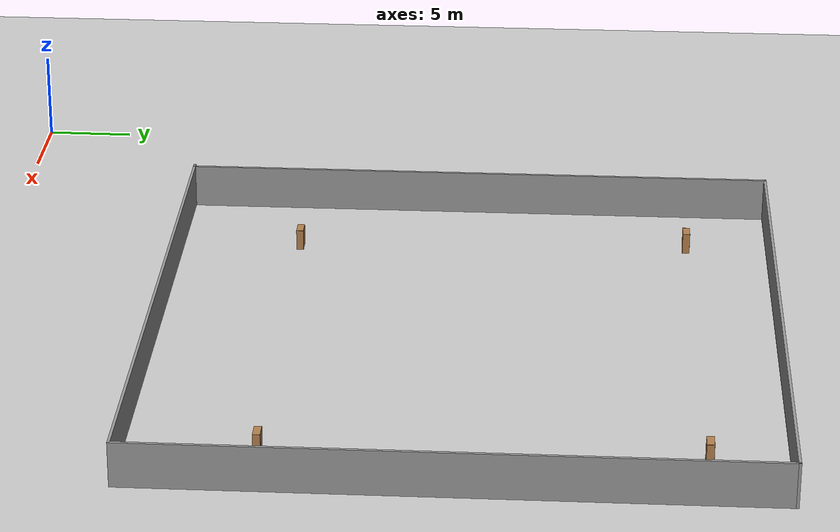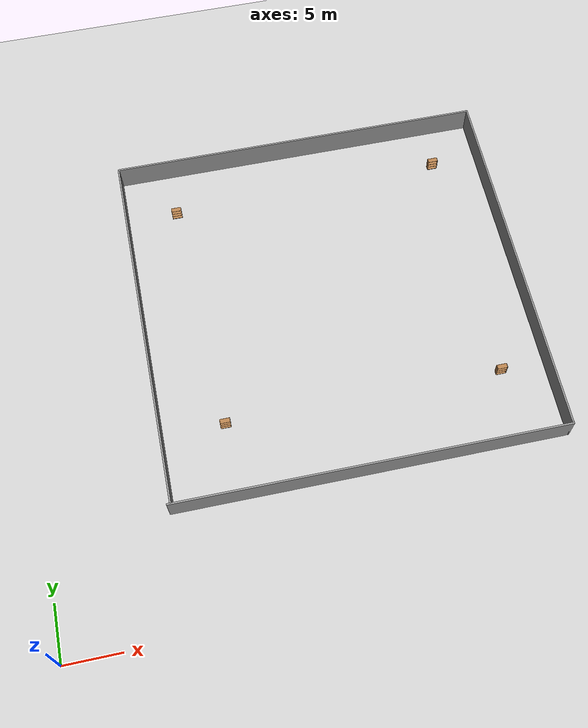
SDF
<sdf version="1.6">
 <world name="default">
  <light name="sun" type="directional">
   <pose>0 0 10 0 -0 0</pose>
   <diffuse>0.8 0.8 0.8 1</diffuse>
   <specular>0.2 0.2 0.2 1</specular>
   <attenuation>
    <range>1000</range>
    <constant>0.9</constant>
    <linear>0.01</linear>
    <quadratic>0.001</quadratic>
   </attenuation>
   <direction>-0.5 0.1 -0.9</direction>
  </light>
  <model name="ground_plane">
   <static>1</static>
   <link name="link">
    <collision name="collision">
     <geometry><plane><normal>0 0 1</normal><size>100 100</size></plane></geometry>
     <surface>
      <contact><collide_bitmask>65535</collide_bitmask></contact>
      <friction><ode><mu>100</mu><mu2>50</mu2></ode></friction>
     </surface>
    </collision>
    <visual name="visual">
     <cast_shadows>0</cast_shadows>
     <geometry><plane><normal>0 0 1</normal><size>100 100</size></plane></geometry>
     <material>
      <script><uri>file://media/materials/scripts/gazebo.material</uri><name>Gazebo/Grey</name></script>
     </material>
    </visual>
   </link>
  </model>
  <gravity>0 0 -9.8</gravity>
  <magnetic_field>6e-06 2.3e-05 -4.2e-05</magnetic_field>
  <atmosphere type="adiabatic"/>
  <physics name="default_physics" default="0" type="ode">
   <max_step_size>0.001</max_step_size>
   <real_time_factor>1</real_time_factor>
   <real_time_update_rate>1000</real_time_update_rate>
  </physics>
  <scene><ambient>0.4 0.4 0.4 1</ambient><background>0.7 0.7 0.7 1</background><shadows>1</shadows></scene>
  <spherical_coordinates>
   <surface_model>EARTH_WGS84</surface_model>
   <latitude_deg>0</latitude_deg>
   <longitude_deg>0</longitude_deg>
   <elevation>0</elevation>
   <heading_deg>0</heading_deg>
  </spherical_coordinates>
  <model name="ped_wall">
   <pose>27.5432 27.4176 0 0 -0 0</pose>
   <link name="Wall_29">
    <collision name="Wall_29_Collision">
     <geometry><box><size>34.75 0.15 2.5</size></box></geometry>
     <pose>0 0 1.25 0 -0 0</pose>
    </collision>
    <visual name="Wall_29_Visual">
     <pose>0 0 1.25 0 -0 0</pose>
     <geometry><box><size>34.75 0.15 2.5</size></box></geometry>
     <material>
      <script><uri>file://media/materials/scripts/gazebo.material</uri><name>Gazebo/Grey</name></script>
      <ambient>1 1 1 1</ambient>
     </material>
     <meta><layer>0</layer></meta>
    </visual>
    <pose>0 -16.925 0 0 -0 0</pose>
   </link>
   <link name="Wall_30">
    <collision name="Wall_30_Collision">
     <geometry><box><size>34 0.15 2.5</size></box></geometry>
     <pose>0 0 1.25 0 -0 0</pose>
    </collision>
    <visual name="Wall_30_Visual">
     <pose>0 0 1.25 0 -0 0</pose>
     <geometry><box><size>34 0.15 2.5</size></box></geometry>
     <material>
      <script><uri>file://media/materials/scripts/gazebo.material</uri><name>Gazebo/Grey</name></script>
      <ambient>1 1 1 1</ambient>
     </material>
     <meta><layer>0</layer></meta>
    </visual>
    <pose>17.3 0 0 0 -0 1.5708</pose>
   </link>
   <link name="Wall_31">
    <collision name="Wall_31_Collision">
     <geometry><box><size>34.5 0.15 2.5</size></box></geometry>
     <pose>0 0 1.25 0 -0 0</pose>
    </collision>
    <visual name="Wall_31_Visual">
     <pose>0 0 1.25 0 -0 0</pose>
     <geometry><box><size>34.5 0.15 2.5</size></box></geometry>
     <material>
      <script><uri>file://media/materials/scripts/gazebo.material</uri><name>Gazebo/Grey</name></script>
      <ambient>1 1 1 1</ambient>
     </material>
     <meta><layer>0</layer></meta>
    </visual>
    <pose>0.125 16.925 0 0 -0 3.14159</pose>
   </link>
   <link name="Wall_32">
    <collision name="Wall_32_Collision">
     <geometry><box><size>34 0.15 2.5</size></box></geometry>
     <pose>0 0 1.25 0 -0 0</pose>
    </collision>
    <visual name="Wall_32_Visual">
     <pose>0 0 1.25 0 -0 0</pose>
     <geometry><box><size>34 0.15 2.5</size></box></geometry>
     <material>
      <script><uri>file://media/materials/scripts/gazebo.material</uri><name>Gazebo/Grey</name></script>
      <ambient>1 1 1 1</ambient>
     </material>
     <meta><layer>0</layer></meta>
    </visual>
    <pose>-17.05 0 0 0 -0 -1.5708</pose>
   </link>
   <static>1</static>
  </model>
  <model name="bookshelf">
   <static>1</static>
   <link name="link">
    <inertial><mass>1</mass></inertial>
    <collision name="back">
     <pose>0 0.005 0.6 0 -0 0</pose>
     <geometry><box><size>0.9 0.01 1.2</size></box></geometry>
    </collision>
    <visual name="visual1">
     <pose>0 0.005 0.6 0 -0 0</pose>
     <geometry><box><size>0.9 0.01 1.2</size></box></geometry>
     <material>
      <script><uri>file://media/materials/scripts/gazebo.material</uri><name>Gazebo/Wood</name></script>
     </material>
    </visual>
    <collision name="left_side">
     <pose>0.45 -0.195 0.6 0 -0 0</pose>
     <geometry><box><size>0.02 0.4 1.2</size></box></geometry>
    </collision>
    <visual name="visual2">
     <pose>0.45 -0.195 0.6 0 -0 0</pose>
     <geometry><box><size>0.02 0.4 1.2</size></box></geometry>
     <material>
      <script><uri>file://media/materials/scripts/gazebo.material</uri><name>Gazebo/Wood</name></script>
     </material>
    </visual>
    <collision name="right_side">
     <pose>-0.45 -0.195 0.6 0 -0 0</pose>
     <geometry><box><size>0.02 0.4 1.2</size></box></geometry>
    </collision>
    <visual name="visual3">
     <pose>-0.45 -0.195 0.6 0 -0 0</pose>
     <geometry><box><size>0.02 0.4 1.2</size></box></geometry>
     <material>
      <script><uri>file://media/materials/scripts/gazebo.material</uri><name>Gazebo/Wood</name></script>
     </material>
    </visual>
    <collision name="bottom">
     <pose>0 -0.195 0.03 0 -0 0</pose>
     <geometry><box><size>0.88 0.4 0.06</size></box></geometry>
    </collision>
    <visual name="visual4">
     <pose>0 -0.195 0.03 0 -0 0</pose>
     <geometry><box><size>0.88 0.4 0.06</size></box></geometry>
     <material>
      <script><uri>file://media/materials/scripts/gazebo.material</uri><name>Gazebo/Wood</name></script>
     </material>
    </visual>
    <collision name="top">
     <pose>0 -0.195 1.19 0 -0 0</pose>
     <geometry><box><size>0.88 0.4 0.02</size></box></geometry>
    </collision>
    <visual name="visual5">
     <pose>0 -0.195 1.19 0 -0 0</pose>
     <geometry><box><size>0.88 0.4 0.02</size></box></geometry>
     <material>
      <script><uri>file://media/materials/scripts/gazebo.material</uri><name>Gazebo/Wood</name></script>
     </material>
    </visual>
    <collision name="low_shelf">
     <pose>0 -0.195 0.43 0 -0 0</pose>
     <geometry><box><size>0.88 0.4 0.02</size></box></geometry>
    </collision>
    <visual name="visual6">
     <pose>0 -0.195 0.43 0 -0 0</pose>
     <geometry><box><size>0.88 0.4 0.02</size></box></geometry>
     <material>
      <script><uri>file://media/materials/scripts/gazebo.material</uri><name>Gazebo/Wood</name></script>
     </material>
    </visual>
    <collision name="high_shelf">
     <pose>0 -0.195 0.8 0 -0 0</pose>
     <geometry><box><size>0.88 0.4 0.02</size></box></geometry>
    </collision>
    <visual name="visual7">
     <pose>0 -0.195 0.8 0 -0 0</pose>
     <geometry><box><size>0.88 0.4 0.02</size></box></geometry>
     <material>
      <script><uri>file://media/materials/scripts/gazebo.material</uri><name>Gazebo/Wood</name></script>
     </material>
    </visual>
   </link>
   <pose>15.1772 39.8449 0 0 -0 0</pose>
  </model>
  <model name="bookshelf_0">
   <static>1</static>
   <link name="link">
    <inertial><mass>1</mass></inertial>
    <collision name="back">
     <pose>0 0.005 0.6 0 -0 0</pose>
     <geometry><box><size>0.9 0.01 1.2</size></box></geometry>
    </collision>
    <visual name="visual1">
     <pose>0 0.005 0.6 0 -0 0</pose>
     <geometry><box><size>0.9 0.01 1.2</size></box></geometry>
     <material>
      <script><uri>file://media/materials/scripts/gazebo.material</uri><name>Gazebo/Wood</name></script>
     </material>
    </visual>
    <collision name="left_side">
     <pose>0.45 -0.195 0.6 0 -0 0</pose>
     <geometry><box><size>0.02 0.4 1.2</size></box></geometry>
    </collision>
    <visual name="visual2">
     <pose>0.45 -0.195 0.6 0 -0 0</pose>
     <geometry><box><size>0.02 0.4 1.2</size></box></geometry>
     <material>
      <script><uri>file://media/materials/scripts/gazebo.material</uri><name>Gazebo/Wood</name></script>
     </material>
    </visual>
    <collision name="right_side">
     <pose>-0.45 -0.195 0.6 0 -0 0</pose>
     <geometry><box><size>0.02 0.4 1.2</size></box></geometry>
    </collision>
    <visual name="visual3">
     <pose>-0.45 -0.195 0.6 0 -0 0</pose>
     <geometry><box><size>0.02 0.4 1.2</size></box></geometry>
     <material>
      <script><uri>file://media/materials/scripts/gazebo.material</uri><name>Gazebo/Wood</name></script>
     </material>
    </visual>
    <collision name="bottom">
     <pose>0 -0.195 0.03 0 -0 0</pose>
     <geometry><box><size>0.88 0.4 0.06</size></box></geometry>
    </collision>
    <visual name="visual4">
     <pose>0 -0.195 0.03 0 -0 0</pose>
     <geometry><box><size>0.88 0.4 0.06</size></box></geometry>
     <material>
      <script><uri>file://media/materials/scripts/gazebo.material</uri><name>Gazebo/Wood</name></script>
     </material>
    </visual>
    <collision name="top">
     <pose>0 -0.195 1.19 0 -0 0</pose>
     <geometry><box><size>0.88 0.4 0.02</size></box></geometry>
    </collision>
    <visual name="visual5">
     <pose>0 -0.195 1.19 0 -0 0</pose>
     <geometry><box><size>0.88 0.4 0.02</size></box></geometry>
     <material>
      <script><uri>file://media/materials/scripts/gazebo.material</uri><name>Gazebo/Wood</name></script>
     </material>
    </visual>
    <collision name="low_shelf">
     <pose>0 -0.195 0.43 0 -0 0</pose>
     <geometry><box><size>0.88 0.4 0.02</size></box></geometry>
    </collision>
    <visual name="visual6">
     <pose>0 -0.195 0.43 0 -0 0</pose>
     <geometry><box><size>0.88 0.4 0.02</size></box></geometry>
     <material>
      <script><uri>file://media/materials/scripts/gazebo.material</uri><name>Gazebo/Wood</name></script>
     </material>
    </visual>
    <collision name="high_shelf">
     <pose>0 -0.195 0.8 0 -0 0</pose>
     <geometry><box><size>0.88 0.4 0.02</size></box></geometry>
    </collision>
    <visual name="visual7">
     <pose>0 -0.195 0.8 0 -0 0</pose>
     <geometry><box><size>0.88 0.4 0.02</size></box></geometry>
     <material>
      <script><uri>file://media/materials/scripts/gazebo.material</uri><name>Gazebo/Wood</name></script>
     </material>
    </visual>
   </link>
   <pose>16.0614 17.5317 0 0 -0 0</pose>
  </model>
  <model name="bookshelf_1">
   <static>1</static>
   <link name="link">
    <inertial><mass>1</mass></inertial>
    <collision name="back">
     <pose>0 0.005 0.6 0 -0 0</pose>
     <geometry><box><size>0.9 0.01 1.2</size></box></geometry>
    </collision>
    <visual name="visual1">
     <pose>0 0.005 0.6 0 -0 0</pose>
     <geometry><box><size>0.9 0.01 1.2</size></box></geometry>
     <material>
      <script><uri>file://media/materials/scripts/gazebo.material</uri><name>Gazebo/Wood</name></script>
     </material>
    </visual>
    <collision name="left_side">
     <pose>0.45 -0.195 0.6 0 -0 0</pose>
     <geometry><box><size>0.02 0.4 1.2</size></box></geometry>
    </collision>
    <visual name="visual2">
     <pose>0.45 -0.195 0.6 0 -0 0</pose>
     <geometry><box><size>0.02 0.4 1.2</size></box></geometry>
     <material>
      <script><uri>file://media/materials/scripts/gazebo.material</uri><name>Gazebo/Wood</name></script>
     </material>
    </visual>
    <collision name="right_side">
     <pose>-0.45 -0.195 0.6 0 -0 0</pose>
     <geometry><box><size>0.02 0.4 1.2</size></box></geometry>
    </collision>
    <visual name="visual3">
     <pose>-0.45 -0.195 0.6 0 -0 0</pose>
     <geometry><box><size>0.02 0.4 1.2</size></box></geometry>
     <material>
      <script><uri>file://media/materials/scripts/gazebo.material</uri><name>Gazebo/Wood</name></script>
     </material>
    </visual>
    <collision name="bottom">
     <pose>0 -0.195 0.03 0 -0 0</pose>
     <geometry><box><size>0.88 0.4 0.06</size></box></geometry>
    </collision>
    <visual name="visual4">
     <pose>0 -0.195 0.03 0 -0 0</pose>
     <geometry><box><size>0.88 0.4 0.06</size></box></geometry>
     <material>
      <script><uri>file://media/materials/scripts/gazebo.material</uri><name>Gazebo/Wood</name></script>
     </material>
    </visual>
    <collision name="top">
     <pose>0 -0.195 1.19 0 -0 0</pose>
     <geometry><box><size>0.88 0.4 0.02</size></box></geometry>
    </collision>
    <visual name="visual5">
     <pose>0 -0.195 1.19 0 -0 0</pose>
     <geometry><box><size>0.88 0.4 0.02</size></box></geometry>
     <material>
      <script><uri>file://media/materials/scripts/gazebo.material</uri><name>Gazebo/Wood</name></script>
     </material>
    </visual>
    <collision name="low_shelf">
     <pose>0 -0.195 0.43 0 -0 0</pose>
     <geometry><box><size>0.88 0.4 0.02</size></box></geometry>
    </collision>
    <visual name="visual6">
     <pose>0 -0.195 0.43 0 -0 0</pose>
     <geometry><box><size>0.88 0.4 0.02</size></box></geometry>
     <material>
      <script><uri>file://media/materials/scripts/gazebo.material</uri><name>Gazebo/Wood</name></script>
     </material>
    </visual>
    <collision name="high_shelf">
     <pose>0 -0.195 0.8 0 -0 0</pose>
     <geometry><box><size>0.88 0.4 0.02</size></box></geometry>
    </collision>
    <visual name="visual7">
     <pose>0 -0.195 0.8 0 -0 0</pose>
     <geometry><box><size>0.88 0.4 0.02</size></box></geometry>
     <material>
      <script><uri>file://media/materials/scripts/gazebo.material</uri><name>Gazebo/Wood</name></script>
     </material>
    </visual>
   </link>
   <pose>40.4371 40.408 0 0 -0 0</pose>
  </model>
  <model name="bookshelf_2">
   <static>1</static>
   <link name="link">
    <inertial><mass>1</mass></inertial>
    <collision name="back">
     <pose>0 0.005 0.6 0 -0 0</pose>
     <geometry><box><size>0.9 0.01 1.2</size></box></geometry>
    </collision>
    <visual name="visual1">
     <pose>0 0.005 0.6 0 -0 0</pose>
     <geometry><box><size>0.9 0.01 1.2</size></box></geometry>
     <material>
      <script><uri>file://media/materials/scripts/gazebo.material</uri><name>Gazebo/Wood</name></script>
     </material>
    </visual>
    <collision name="left_side">
     <pose>0.45 -0.195 0.6 0 -0 0</pose>
     <geometry><box><size>0.02 0.4 1.2</size></box></geometry>
    </collision>
    <visual name="visual2">
     <pose>0.45 -0.195 0.6 0 -0 0</pose>
     <geometry><box><size>0.02 0.4 1.2</size></box></geometry>
     <material>
      <script><uri>file://media/materials/scripts/gazebo.material</uri><name>Gazebo/Wood</name></script>
     </material>
    </visual>
    <collision name="right_side">
     <pose>-0.45 -0.195 0.6 0 -0 0</pose>
     <geometry><box><size>0.02 0.4 1.2</size></box></geometry>
    </collision>
    <visual name="visual3">
     <pose>-0.45 -0.195 0.6 0 -0 0</pose>
     <geometry><box><size>0.02 0.4 1.2</size></box></geometry>
     <material>
      <script><uri>file://media/materials/scripts/gazebo.material</uri><name>Gazebo/Wood</name></script>
     </material>
    </visual>
    <collision name="bottom">
     <pose>0 -0.195 0.03 0 -0 0</pose>
     <geometry><box><size>0.88 0.4 0.06</size></box></geometry>
    </collision>
    <visual name="visual4">
     <pose>0 -0.195 0.03 0 -0 0</pose>
     <geometry><box><size>0.88 0.4 0.06</size></box></geometry>
     <material>
      <script><uri>file://media/materials/scripts/gazebo.material</uri><name>Gazebo/Wood</name></script>
     </material>
    </visual>
    <collision name="top">
     <pose>0 -0.195 1.19 0 -0 0</pose>
     <geometry><box><size>0.88 0.4 0.02</size></box></geometry>
    </collision>
    <visual name="visual5">
     <pose>0 -0.195 1.19 0 -0 0</pose>
     <geometry><box><size>0.88 0.4 0.02</size></box></geometry>
     <material>
      <script><uri>file://media/materials/scripts/gazebo.material</uri><name>Gazebo/Wood</name></script>
     </material>
    </visual>
    <collision name="low_shelf">
     <pose>0 -0.195 0.43 0 -0 0</pose>
     <geometry><box><size>0.88 0.4 0.02</size></box></geometry>
    </collision>
    <visual name="visual6">
     <pose>0 -0.195 0.43 0 -0 0</pose>
     <geometry><box><size>0.88 0.4 0.02</size></box></geometry>
     <material>
      <script><uri>file://media/materials/scripts/gazebo.material</uri><name>Gazebo/Wood</name></script>
     </material>
    </visual>
    <collision name="high_shelf">
     <pose>0 -0.195 0.8 0 -0 0</pose>
     <geometry><box><size>0.88 0.4 0.02</size></box></geometry>
    </collision>
    <visual name="visual7">
     <pose>0 -0.195 0.8 0 -0 0</pose>
     <geometry><box><size>0.88 0.4 0.02</size></box></geometry>
     <material>
      <script><uri>file://media/materials/scripts/gazebo.material</uri><name>Gazebo/Wood</name></script>
     </material>
    </visual>
   </link>
   <pose>40.8093 17.5925 0 0 -0 0</pose>
  </model>
 </world>
</sdf>
